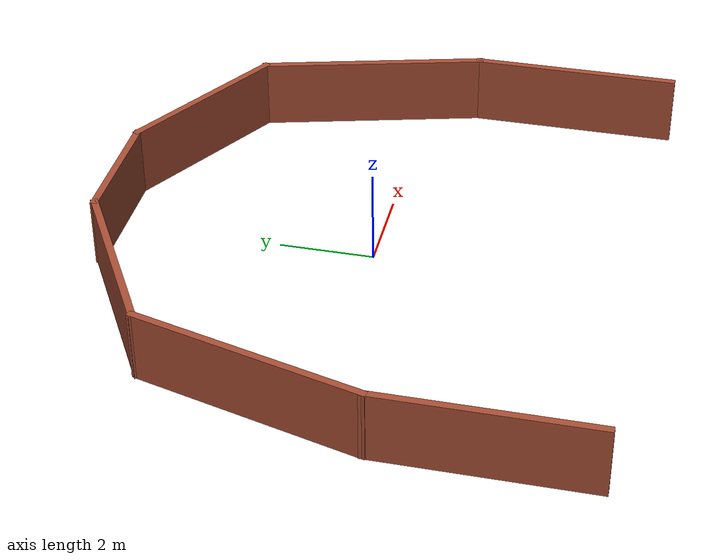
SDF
<?xml version='1.0'?>
<sdf version='1.6'>
  <model name='U-shapeBricks'>
    <link name='Wall_102'>
      <pose frame=''>-5.29701 1.19875 0 0 -0 1.30887</pose>
      <self_collide>0</self_collide>
      <enable_wind>0</enable_wind>
      <kinematic>0</kinematic>
      <gravity>1</gravity>
      <inertial>
        <mass>1</mass>
        <pose frame=''>0 0 0 0 -0 0</pose>
        <inertia>
          <ixx>1</ixx>
          <ixy>0</ixy>
          <ixz>0</ixz>
          <iyy>1</iyy>
          <iyz>0</iyz>
          <izz>1</izz>
        </inertia>
      </inertial>
      <visual name='Wall_102_Visual'>
        <pose frame=''>0 0 0.75 0 -0 0</pose>
        <geometry>
          <box>
            <size>5 0.15 1.5</size>
          </box>
        </geometry>
        <material>
          <script>
            <uri>file://media/materials/scripts/gazebo.material</uri>
            <name>Gazebo/Bricks</name>
          </script>
          <ambient>1 1 1 1</ambient>
          <shader type='vertex'>
            <normal_map>__default__</normal_map>
          </shader>
          <diffuse>1 1 1 1</diffuse>
          <specular>0.2 0.2 0.2 1</specular>
          <emissive>0 0 0 1</emissive>
        </material>
        <meta>
          <layer>0</layer>
        </meta>
        <transparency>0</transparency>
        <cast_shadows>1</cast_shadows>
      </visual>
      <collision name='Wall_102_Collision'>
        <laser_retro>0</laser_retro>
        <max_contacts>10</max_contacts>
        <pose frame=''>0 0 0.75 0 -0 0</pose>
        <geometry>
          <box>
            <size>5 0.15 1.5</size>
          </box>
        </geometry>
        <surface>
          <friction>
            <ode>
              <mu>1</mu>
              <mu2>1</mu2>
              <fdir1>0 0 0</fdir1>
              <slip1>0</slip1>
              <slip2>0</slip2>
            </ode>
            <torsional>
              <coefficient>1</coefficient>
              <patch_radius>0</patch_radius>
              <surface_radius>0</surface_radius>
              <use_patch_radius>1</use_patch_radius>
              <ode>
                <slip>0</slip>
              </ode>
            </torsional>
          </friction>
          <bounce>
            <restitution_coefficient>0</restitution_coefficient>
            <threshold>1e+06</threshold>
          </bounce>
          <contact>
            <collide_without_contact>0</collide_without_contact>
            <collide_without_contact_bitmask>1</collide_without_contact_bitmask>
            <collide_bitmask>1</collide_bitmask>
            <ode>
              <soft_cfm>0</soft_cfm>
              <soft_erp>0.2</soft_erp>
              <kp>1e+13</kp>
              <kd>1</kd>
              <max_vel>0.01</max_vel>
              <min_depth>0</min_depth>
            </ode>
            <bullet>
              <split_impulse>1</split_impulse>
              <split_impulse_penetration_threshold>-0.01</split_impulse_penetration_threshold>
              <soft_cfm>0</soft_cfm>
              <soft_erp>0.2</soft_erp>
              <kp>1e+13</kp>
              <kd>1</kd>
            </bullet>
          </contact>
        </surface>
      </collision>
    </link>
    <link name='Wall_103'>
      <pose frame=''>-3.00201 4.50375 0 0 -0 0.523624</pose>
      <self_collide>0</self_collide>
      <enable_wind>0</enable_wind>
      <kinematic>0</kinematic>
      <gravity>1</gravity>
      <inertial>
        <mass>1</mass>
        <pose frame=''>0 0 0 0 -0 0</pose>
        <inertia>
          <ixx>1</ixx>
          <ixy>0</ixy>
          <ixz>0</ixz>
          <iyy>1</iyy>
          <iyz>0</iyz>
          <izz>1</izz>
        </inertia>
      </inertial>
      <visual name='Wall_103_Visual'>
        <pose frame=''>0 0 0.75 0 -0 0</pose>
        <geometry>
          <box>
            <size>4 0.15 1.5</size>
          </box>
        </geometry>
        <material>
          <script>
            <uri>file://media/materials/scripts/gazebo.material</uri>
            <name>Gazebo/Bricks</name>
          </script>
          <ambient>1 1 1 1</ambient>
          <shader type='vertex'>
            <normal_map>__default__</normal_map>
          </shader>
          <diffuse>0.7 0.7 0.7 1</diffuse>
          <specular>0.01 0.01 0.01 1</specular>
          <emissive>0 0 0 1</emissive>
        </material>
        <meta>
          <layer>0</layer>
        </meta>
        <transparency>0</transparency>
        <cast_shadows>1</cast_shadows>
      </visual>
      <collision name='Wall_103_Collision'>
        <laser_retro>0</laser_retro>
        <max_contacts>10</max_contacts>
        <pose frame=''>0 0 0.75 0 -0 0</pose>
        <geometry>
          <box>
            <size>4 0.15 1.5</size>
          </box>
        </geometry>
        <surface>
          <friction>
            <ode>
              <mu>1</mu>
              <mu2>1</mu2>
              <fdir1>0 0 0</fdir1>
              <slip1>0</slip1>
              <slip2>0</slip2>
            </ode>
            <torsional>
              <coefficient>1</coefficient>
              <patch_radius>0</patch_radius>
              <surface_radius>0</surface_radius>
              <use_patch_radius>1</use_patch_radius>
              <ode>
                <slip>0</slip>
              </ode>
            </torsional>
          </friction>
          <bounce>
            <restitution_coefficient>0</restitution_coefficient>
            <threshold>1e+06</threshold>
          </bounce>
          <contact>
            <collide_without_contact>0</collide_without_contact>
            <collide_without_contact_bitmask>1</collide_without_contact_bitmask>
            <collide_bitmask>1</collide_bitmask>
            <ode>
              <soft_cfm>0</soft_cfm>
              <soft_erp>0.2</soft_erp>
              <kp>1e+13</kp>
              <kd>1</kd>
              <max_vel>0.01</max_vel>
              <min_depth>0</min_depth>
            </ode>
            <bullet>
              <split_impulse>1</split_impulse>
              <split_impulse_penetration_threshold>-0.01</split_impulse_penetration_threshold>
              <soft_cfm>0</soft_cfm>
              <soft_erp>0.2</soft_erp>
              <kp>1e+13</kp>
              <kd>1</kd>
            </bullet>
          </contact>
        </surface>
      </collision>
    </link>
    <link name='Wall_105'>
      <pose frame=''>5.92499 -3.31875 0 0 -0 1.5708</pose>
      <self_collide>0</self_collide>
      <enable_wind>0</enable_wind>
      <kinematic>0</kinematic>
      <gravity>1</gravity>
      <inertial>
        <mass>1</mass>
        <pose frame=''>0 0 0 0 -0 0</pose>
        <inertia>
          <ixx>1</ixx>
          <ixy>0</ixy>
          <ixz>0</ixz>
          <iyy>1</iyy>
          <iyz>0</iyz>
          <izz>1</izz>
        </inertia>
      </inertial>
      <visual name='Wall_105_Visual'>
        <pose frame=''>0 0 0.75 0 -0 0</pose>
        <geometry>
          <box>
            <size>4.5 0.15 1.5</size>
          </box>
        </geometry>
        <material>
          <script>
            <uri>file://media/materials/scripts/gazebo.material</uri>
            <name>Gazebo/Bricks</name>
          </script>
          <ambient>1 1 1 1</ambient>
          <shader type='vertex'>
            <normal_map>__default__</normal_map>
          </shader>
          <diffuse>1 1 1 1</diffuse>
          <specular>0.2 0.2 0.2 1</specular>
          <emissive>0 0 0 1</emissive>
        </material>
        <meta>
          <layer>0</layer>
        </meta>
        <transparency>0</transparency>
        <cast_shadows>1</cast_shadows>
      </visual>
      <collision name='Wall_105_Collision'>
        <laser_retro>0</laser_retro>
        <max_contacts>10</max_contacts>
        <pose frame=''>0 0 0.75 0 -0 0</pose>
        <geometry>
          <box>
            <size>4.5 0.15 1.5</size>
          </box>
        </geometry>
        <surface>
          <friction>
            <ode>
              <mu>1</mu>
              <mu2>1</mu2>
              <fdir1>0 0 0</fdir1>
              <slip1>0</slip1>
              <slip2>0</slip2>
            </ode>
            <torsional>
              <coefficient>1</coefficient>
              <patch_radius>0</patch_radius>
              <surface_radius>0</surface_radius>
              <use_patch_radius>1</use_patch_radius>
              <ode>
                <slip>0</slip>
              </ode>
            </torsional>
          </friction>
          <bounce>
            <restitution_coefficient>0</restitution_coefficient>
            <threshold>1e+06</threshold>
          </bounce>
          <contact>
            <collide_without_contact>0</collide_without_contact>
            <collide_without_contact_bitmask>1</collide_without_contact_bitmask>
            <collide_bitmask>1</collide_bitmask>
            <ode>
              <soft_cfm>0</soft_cfm>
              <soft_erp>0.2</soft_erp>
              <kp>1e+13</kp>
              <kd>1</kd>
              <max_vel>0.01</max_vel>
              <min_depth>0</min_depth>
            </ode>
            <bullet>
              <split_impulse>1</split_impulse>
              <split_impulse_penetration_threshold>-0.01</split_impulse_penetration_threshold>
              <soft_cfm>0</soft_cfm>
              <soft_erp>0.2</soft_erp>
              <kp>1e+13</kp>
              <kd>1</kd>
            </bullet>
          </contact>
        </surface>
      </collision>
    </link>
    <link name='Wall_106'>
      <pose frame=''>5.29749 1.19875 0 0 -0 1.83253</pose>
      <self_collide>0</self_collide>
      <enable_wind>0</enable_wind>
      <kinematic>0</kinematic>
      <gravity>1</gravity>
      <inertial>
        <mass>1</mass>
        <pose frame=''>0 0 0 0 -0 0</pose>
        <inertia>
          <ixx>1</ixx>
          <ixy>0</ixy>
          <ixz>0</ixz>
          <iyy>1</iyy>
          <iyz>0</iyz>
          <izz>1</izz>
        </inertia>
      </inertial>
      <visual name='Wall_106_Visual'>
        <pose frame=''>0 0 0.75 0 -0 0</pose>
        <geometry>
          <box>
            <size>5 0.15 1.5</size>
          </box>
        </geometry>
        <material>
          <script>
            <uri>file://media/materials/scripts/gazebo.material</uri>
            <name>Gazebo/Bricks</name>
          </script>
          <ambient>1 1 1 1</ambient>
          <shader type='vertex'>
            <normal_map>__default__</normal_map>
          </shader>
          <diffuse>0.7 0.7 0.7 1</diffuse>
          <specular>0.01 0.01 0.01 1</specular>
          <emissive>0 0 0 1</emissive>
        </material>
        <meta>
          <layer>0</layer>
        </meta>
        <transparency>0</transparency>
        <cast_shadows>1</cast_shadows>
      </visual>
      <collision name='Wall_106_Collision'>
        <laser_retro>0</laser_retro>
        <max_contacts>10</max_contacts>
        <pose frame=''>0 0 0.75 0 -0 0</pose>
        <geometry>
          <box>
            <size>5 0.15 1.5</size>
          </box>
        </geometry>
        <surface>
          <friction>
            <ode>
              <mu>1</mu>
              <mu2>1</mu2>
              <fdir1>0 0 0</fdir1>
              <slip1>0</slip1>
              <slip2>0</slip2>
            </ode>
            <torsional>
              <coefficient>1</coefficient>
              <patch_radius>0</patch_radius>
              <surface_radius>0</surface_radius>
              <use_patch_radius>1</use_patch_radius>
              <ode>
                <slip>0</slip>
              </ode>
            </torsional>
          </friction>
          <bounce>
            <restitution_coefficient>0</restitution_coefficient>
            <threshold>1e+06</threshold>
          </bounce>
          <contact>
            <collide_without_contact>0</collide_without_contact>
            <collide_without_contact_bitmask>1</collide_without_contact_bitmask>
            <collide_bitmask>1</collide_bitmask>
            <ode>
              <soft_cfm>0</soft_cfm>
              <soft_erp>0.2</soft_erp>
              <kp>1e+13</kp>
              <kd>1</kd>
              <max_vel>0.01</max_vel>
              <min_depth>0</min_depth>
            </ode>
            <bullet>
              <split_impulse>1</split_impulse>
              <split_impulse_penetration_threshold>-0.01</split_impulse_penetration_threshold>
              <soft_cfm>0</soft_cfm>
              <soft_erp>0.2</soft_erp>
              <kp>1e+13</kp>
              <kd>1</kd>
            </bullet>
          </contact>
        </surface>
      </collision>
    </link>
    <link name='Wall_107'>
      <pose frame=''>3.00299 4.50375 0 0 -0 2.61797</pose>
      <self_collide>0</self_collide>
      <enable_wind>0</enable_wind>
      <kinematic>0</kinematic>
      <gravity>1</gravity>
      <inertial>
        <mass>1</mass>
        <pose frame=''>0 0 0 0 -0 0</pose>
        <inertia>
          <ixx>1</ixx>
          <ixy>0</ixy>
          <ixz>0</ixz>
          <iyy>1</iyy>
          <iyz>0</iyz>
          <izz>1</izz>
        </inertia>
      </inertial>
      <visual name='Wall_107_Visual'>
        <pose frame=''>0 0 0.75 0 -0 0</pose>
        <geometry>
          <box>
            <size>4 0.15 1.5</size>
          </box>
        </geometry>
        <material>
          <script>
            <uri>file://media/materials/scripts/gazebo.material</uri>
            <name>Gazebo/Bricks</name>
          </script>
          <ambient>1 1 1 1</ambient>
          <shader type='vertex'>
            <normal_map>__default__</normal_map>
          </shader>
          <diffuse>1 1 1 1</diffuse>
          <specular>0.2 0.2 0.2 1</specular>
          <emissive>0 0 0 1</emissive>
        </material>
        <meta>
          <layer>0</layer>
        </meta>
        <transparency>0</transparency>
        <cast_shadows>1</cast_shadows>
      </visual>
      <collision name='Wall_107_Collision'>
        <laser_retro>0</laser_retro>
        <max_contacts>10</max_contacts>
        <pose frame=''>0 0 0.75 0 -0 0</pose>
        <geometry>
          <box>
            <size>4 0.15 1.5</size>
          </box>
        </geometry>
        <surface>
          <friction>
            <ode>
              <mu>1</mu>
              <mu2>1</mu2>
              <fdir1>0 0 0</fdir1>
              <slip1>0</slip1>
              <slip2>0</slip2>
            </ode>
            <torsional>
              <coefficient>1</coefficient>
              <patch_radius>0</patch_radius>
              <surface_radius>0</surface_radius>
              <use_patch_radius>1</use_patch_radius>
              <ode>
                <slip>0</slip>
              </ode>
            </torsional>
          </friction>
          <bounce>
            <restitution_coefficient>0</restitution_coefficient>
            <threshold>1e+06</threshold>
          </bounce>
          <contact>
            <collide_without_contact>0</collide_without_contact>
            <collide_without_contact_bitmask>1</collide_without_contact_bitmask>
            <collide_bitmask>1</collide_bitmask>
            <ode>
              <soft_cfm>0</soft_cfm>
              <soft_erp>0.2</soft_erp>
              <kp>1e+13</kp>
              <kd>1</kd>
              <max_vel>0.01</max_vel>
              <min_depth>0</min_depth>
            </ode>
            <bullet>
              <split_impulse>1</split_impulse>
              <split_impulse_penetration_threshold>-0.01</split_impulse_penetration_threshold>
              <soft_cfm>0</soft_cfm>
              <soft_erp>0.2</soft_erp>
              <kp>1e+13</kp>
              <kd>1</kd>
            </bullet>
          </contact>
        </surface>
      </collision>
    </link>
    <link name='Wall_108'>
      <pose frame=''>0.000489 5.46625 0 0 -0 3.14159</pose>
      <self_collide>0</self_collide>
      <enable_wind>0</enable_wind>
      <kinematic>0</kinematic>
      <gravity>1</gravity>
      <inertial>
        <mass>1</mass>
        <pose frame=''>0 0 0 0 -0 0</pose>
        <inertia>
          <ixx>1</ixx>
          <ixy>0</ixy>
          <ixz>0</ixz>
          <iyy>1</iyy>
          <iyz>0</iyz>
          <izz>1</izz>
        </inertia>
      </inertial>
      <visual name='Wall_108_Visual'>
        <pose frame=''>0 0 0.75 0 -0 0</pose>
        <geometry>
          <box>
            <size>2.82072 0.15 1.5</size>
          </box>
        </geometry>
        <material>
          <script>
            <uri>file://media/materials/scripts/gazebo.material</uri>
            <name>Gazebo/Bricks</name>
          </script>
          <ambient>1 1 1 1</ambient>
          <shader type='vertex'>
            <normal_map>__default__</normal_map>
          </shader>
          <diffuse>0.7 0.7 0.7 1</diffuse>
          <specular>0.01 0.01 0.01 1</specular>
          <emissive>0 0 0 1</emissive>
        </material>
        <meta>
          <layer>0</layer>
        </meta>
        <transparency>0</transparency>
        <cast_shadows>1</cast_shadows>
      </visual>
      <collision name='Wall_108_Collision'>
        <laser_retro>0</laser_retro>
        <max_contacts>10</max_contacts>
        <pose frame=''>0 0 0.75 0 -0 0</pose>
        <geometry>
          <box>
            <size>2.82072 0.15 1.5</size>
          </box>
        </geometry>
        <surface>
          <friction>
            <ode>
              <mu>1</mu>
              <mu2>1</mu2>
              <fdir1>0 0 0</fdir1>
              <slip1>0</slip1>
              <slip2>0</slip2>
            </ode>
            <torsional>
              <coefficient>1</coefficient>
              <patch_radius>0</patch_radius>
              <surface_radius>0</surface_radius>
              <use_patch_radius>1</use_patch_radius>
              <ode>
                <slip>0</slip>
              </ode>
            </torsional>
          </friction>
          <bounce>
            <restitution_coefficient>0</restitution_coefficient>
            <threshold>1e+06</threshold>
          </bounce>
          <contact>
            <collide_without_contact>0</collide_without_contact>
            <collide_without_contact_bitmask>1</collide_without_contact_bitmask>
            <collide_bitmask>1</collide_bitmask>
            <ode>
              <soft_cfm>0</soft_cfm>
              <soft_erp>0.2</soft_erp>
              <kp>1e+13</kp>
              <kd>1</kd>
              <max_vel>0.01</max_vel>
              <min_depth>0</min_depth>
            </ode>
            <bullet>
              <split_impulse>1</split_impulse>
              <split_impulse_penetration_threshold>-0.01</split_impulse_penetration_threshold>
              <soft_cfm>0</soft_cfm>
              <soft_erp>0.2</soft_erp>
              <kp>1e+13</kp>
              <kd>1</kd>
            </bullet>
          </contact>
        </surface>
      </collision>
    </link>
    <link name='Wall_98'>
      <pose frame=''>-5.92501 -3.31875 0 0 -0 1.5708</pose>
      <self_collide>0</self_collide>
      <enable_wind>0</enable_wind>
      <kinematic>0</kinematic>
      <gravity>1</gravity>
      <inertial>
        <mass>1</mass>
        <pose frame=''>0 0 0 0 -0 0</pose>
        <inertia>
          <ixx>1</ixx>
          <ixy>0</ixy>
          <ixz>0</ixz>
          <iyy>1</iyy>
          <iyz>0</iyz>
          <izz>1</izz>
        </inertia>
      </inertial>
      <visual name='Wall_98_Visual'>
        <pose frame=''>0 0 0.75 0 -0 0</pose>
        <geometry>
          <box>
            <size>4.5 0.15 1.5</size>
          </box>
        </geometry>
        <material>
          <script>
            <uri>file://media/materials/scripts/gazebo.material</uri>
            <name>Gazebo/Bricks</name>
          </script>
          <ambient>1 1 1 1</ambient>
          <shader type='vertex'>
            <normal_map>__default__</normal_map>
          </shader>
          <diffuse>1 1 1 1</diffuse>
          <specular>0.2 0.2 0.2 1</specular>
          <emissive>0 0 0 1</emissive>
        </material>
        <meta>
          <layer>0</layer>
        </meta>
        <transparency>0</transparency>
        <cast_shadows>1</cast_shadows>
      </visual>
      <collision name='Wall_98_Collision'>
        <laser_retro>0</laser_retro>
        <max_contacts>10</max_contacts>
        <pose frame=''>0 0 0.75 0 -0 0</pose>
        <geometry>
          <box>
            <size>4.5 0.15 1.5</size>
          </box>
        </geometry>
        <surface>
          <friction>
            <ode>
              <mu>1</mu>
              <mu2>1</mu2>
              <fdir1>0 0 0</fdir1>
              <slip1>0</slip1>
              <slip2>0</slip2>
            </ode>
            <torsional>
              <coefficient>1</coefficient>
              <patch_radius>0</patch_radius>
              <surface_radius>0</surface_radius>
              <use_patch_radius>1</use_patch_radius>
              <ode>
                <slip>0</slip>
              </ode>
            </torsional>
          </friction>
          <bounce>
            <restitution_coefficient>0</restitution_coefficient>
            <threshold>1e+06</threshold>
          </bounce>
          <contact>
            <collide_without_contact>0</collide_without_contact>
            <collide_without_contact_bitmask>1</collide_without_contact_bitmask>
            <collide_bitmask>1</collide_bitmask>
            <ode>
              <soft_cfm>0</soft_cfm>
              <soft_erp>0.2</soft_erp>
              <kp>1e+13</kp>
              <kd>1</kd>
              <max_vel>0.01</max_vel>
              <min_depth>0</min_depth>
            </ode>
            <bullet>
              <split_impulse>1</split_impulse>
              <split_impulse_penetration_threshold>-0.01</split_impulse_penetration_threshold>
              <soft_cfm>0</soft_cfm>
              <soft_erp>0.2</soft_erp>
              <kp>1e+13</kp>
              <kd>1</kd>
            </bullet>
          </contact>
        </surface>
      </collision>
    </link>
    <static>1</static>
    <allow_auto_disable>1</allow_auto_disable>
  </model>
</sdf>
